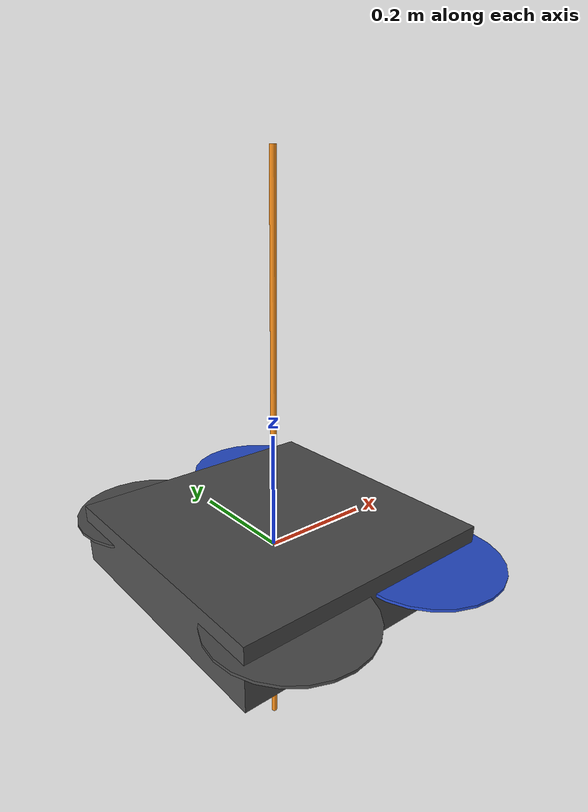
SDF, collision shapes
<sdf version='1.5'>
  <model name='iris'>
    <link name='base_link'>
      <pose frame=''>0 0 0 0 -0 0</pose>
      <inertial>
        <pose frame=''>0 0 0 0 -0 0</pose>
        <mass>1.5</mass>
        <inertia>
          <ixx>0.0347563</ixx>
          <ixy>0</ixy>
          <ixz>0</ixz>
          <iyy>0.0458929</iyy>
          <iyz>0</iyz>
          <izz>0.0977</izz>
        </inertia>
      </inertial>
      <collision name='base_link_inertia_collision'>
        <pose frame=''>0 0 0 0 -0 0</pose>
        <geometry>
          <box>
            <size>0.47 0.47 0.11</size>
          </box>
        </geometry>
        <surface>
          <contact>
            <ode>
              <min_depth>0.001</min_depth>
              <max_vel>0</max_vel>
            </ode>
          </contact>
          <friction>
            <ode/>
          </friction>
        </surface>
      </collision>
      <visual name='base_link_inertia_visual'>
        <pose frame=''>0 0 0 0 -0 0</pose>
        <geometry>
          <mesh>
            <scale>1 1 1</scale>
            <uri>model://rotors_description/meshes/iris.stl</uri>
          </mesh>
        </geometry>
        <material>
          <script>
            <name>Gazebo/DarkGrey</name>
            <uri>file://media/materials/scripts/gazebo.material</uri>
          </script>
        </material>
      </visual>
      <gravity>1</gravity>
      <velocity_decay/>
      <self_collide>0</self_collide>
    </link>
    <link name='iris/imu_link'>
      <pose frame=''>0 0 0 0 -0 0</pose>
      <inertial>
        <pose frame=''>0 0 0 0 -0 0</pose>
        <mass>0.015</mass>
        <inertia>
          <ixx>1e-05</ixx>
          <ixy>0</ixy>
          <ixz>0</ixz>
          <iyy>1e-05</iyy>
          <iyz>0</iyz>
          <izz>1e-05</izz>
        </inertia>
      </inertial>
    </link>
    <joint name='iris/imu_joint' type='revolute'>
      <child>iris/imu_link</child>
      <parent>base_link</parent>
      <axis>
        <xyz>1 0 0</xyz>
        <limit>
          <lower>0</lower>
          <upper>0</upper>
          <effort>0</effort>
          <velocity>0</velocity>
        </limit>
        <dynamics>
          <spring_reference>0</spring_reference>
          <spring_stiffness>0</spring_stiffness>
        </dynamics>
        <use_parent_model_frame>1</use_parent_model_frame>
      </axis>
    </joint>
    <link name='pendulum_link'>
      <pose frame=''>0 0 0.11 0 -0 0</pose>
      <inertial>
        <pose frame=''>0 0 0.61 0 -0 0</pose>
        <mass>0.002</mass>
        <inertia>
          <ixx>9.75e-07</ixx>
          <ixy>0</ixy>
          <ixz>0</ixz>
          <iyy>0.000166704</iyy>
          <iyz>0</iyz>
          <izz>0.000167604</izz>
        </inertia>
      </inertial>
      <collision name='pendulum_link_collision'>
        <pose frame=''>0 0 0 0 -0 0</pose>
        <geometry>
          <cylinder>
            <length>1</length>
            <radius>0.005</radius>
          </cylinder>
        </geometry>
        <surface>
          <contact>
            <ode/>
          </contact>
          <friction>
            <ode/>
          </friction>
        </surface>
      </collision>
      <visual name='pendulum_link_visual'>
        <pose frame=''>0 0 0.61 0 -0 0</pose>
        <geometry>
          <cylinder>
            <length>1</length>
            <radius>0.005</radius>
          </cylinder>
        </geometry>
        <material>
          <script>
            <name>Gazebo/Orange</name>
            <uri>file://media/materials/scripts/gazebo.material</uri>
          </script>
        </material>
      </visual>
      <gravity>1</gravity>
      <velocity_decay/>
      <self_collide>0</self_collide>
    </link>
    <joint name='pendulum_joint' type='revolute'>
      <child>pendulum_link</child>
      <parent>base_link</parent>
      <axis>
        <xyz>1 0 0</xyz>
        <limit>
          <lower>-1e+16</lower>
          <upper>1e+16</upper>
        </limit>
        <dynamics>
          <spring_reference>0</spring_reference>
          <spring_stiffness>0</spring_stiffness>
        </dynamics>
        <use_parent_model_frame>1</use_parent_model_frame>
      </axis>
    </joint>
    <link name='rotor_0'>
      <pose frame=''>0.13 -0.22 0.023 0 -0 0</pose>
      <inertial>
        <pose frame=''>0 0 0 0 -0 0</pose>
        <mass>0.005</mass>
        <inertia>
          <ixx>9.75e-07</ixx>
          <ixy>0</ixy>
          <ixz>0</ixz>
          <iyy>0.000273104</iyy>
          <iyz>0</iyz>
          <izz>0.000274004</izz>
        </inertia>
      </inertial>
      <collision name='rotor_0_collision'>
        <pose frame=''>0 0 0 0 -0 0</pose>
        <geometry>
          <cylinder>
            <length>0.005</length>
            <radius>0.128</radius>
          </cylinder>
        </geometry>
        <surface>
          <contact>
            <ode/>
          </contact>
          <friction>
            <ode/>
          </friction>
        </surface>
      </collision>
      <visual name='rotor_0_visual'>
        <pose frame=''>0 0 0 0 -0 0</pose>
        <geometry>
          <mesh>
            <scale>1 1 1</scale>
            <uri>model://rotors_description/meshes/iris_prop_ccw.dae</uri>
          </mesh>
        </geometry>
        <material>
          <script>
            <name>Gazebo/Blue</name>
            <uri>file://media/materials/scripts/gazebo.material</uri>
          </script>
        </material>
      </visual>
      <gravity>1</gravity>
      <velocity_decay/>
      <self_collide>0</self_collide>
    </link>
    <joint name='rotor_0_joint' type='revolute'>
      <child>rotor_0</child>
      <parent>base_link</parent>
      <axis>
        <xyz>0 0 1</xyz>
        <limit>
          <lower>-1e+16</lower>
          <upper>1e+16</upper>
        </limit>
        <dynamics>
          <spring_reference>0</spring_reference>
          <spring_stiffness>0</spring_stiffness>
        </dynamics>
        <use_parent_model_frame>1</use_parent_model_frame>
      </axis>
    </joint>
    <link name='rotor_1'>
      <pose frame=''>-0.13 0.2 0.023 0 -0 0</pose>
      <inertial>
        <pose frame=''>0 0 0 0 -0 0</pose>
        <mass>0.005</mass>
        <inertia>
          <ixx>9.75e-07</ixx>
          <ixy>0</ixy>
          <ixz>0</ixz>
          <iyy>0.000273104</iyy>
          <iyz>0</iyz>
          <izz>0.000274004</izz>
        </inertia>
      </inertial>
      <collision name='rotor_1_collision'>
        <pose frame=''>0 0 0 0 -0 0</pose>
        <geometry>
          <cylinder>
            <length>0.005</length>
            <radius>0.128</radius>
          </cylinder>
        </geometry>
        <surface>
          <contact>
            <ode/>
          </contact>
          <friction>
            <ode/>
          </friction>
        </surface>
      </collision>
      <visual name='rotor_1_visual'>
        <pose frame=''>0 0 0 0 -0 0</pose>
        <geometry>
          <mesh>
            <scale>1 1 1</scale>
            <uri>model://rotors_description/meshes/iris_prop_ccw.dae</uri>
          </mesh>
        </geometry>
        <material>
          <script>
            <name>Gazebo/DarkGrey</name>
            <uri>file://media/materials/scripts/gazebo.material</uri>
          </script>
        </material>
      </visual>
      <gravity>1</gravity>
      <velocity_decay/>
      <self_collide>0</self_collide>
    </link>
    <joint name='rotor_1_joint' type='revolute'>
      <child>rotor_1</child>
      <parent>base_link</parent>
      <axis>
        <xyz>0 0 1</xyz>
        <limit>
          <lower>-1e+16</lower>
          <upper>1e+16</upper>
        </limit>
        <dynamics>
          <spring_reference>0</spring_reference>
          <spring_stiffness>0</spring_stiffness>
        </dynamics>
        <use_parent_model_frame>1</use_parent_model_frame>
      </axis>
    </joint>
    <link name='rotor_2'>
      <pose frame=''>0.13 0.22 0.023 0 -0 0</pose>
      <inertial>
        <pose frame=''>0 0 0 0 -0 0</pose>
        <mass>0.005</mass>
        <inertia>
          <ixx>9.75e-07</ixx>
          <ixy>0</ixy>
          <ixz>0</ixz>
          <iyy>0.000273104</iyy>
          <iyz>0</iyz>
          <izz>0.000274004</izz>
        </inertia>
      </inertial>
      <collision name='rotor_2_collision'>
        <pose frame=''>0 0 0 0 -0 0</pose>
        <geometry>
          <cylinder>
            <length>0.005</length>
            <radius>0.128</radius>
          </cylinder>
        </geometry>
        <surface>
          <contact>
            <ode/>
          </contact>
          <friction>
            <ode/>
          </friction>
        </surface>
      </collision>
      <visual name='rotor_2_visual'>
        <pose frame=''>0 0 0 0 -0 0</pose>
        <geometry>
          <mesh>
            <scale>1 1 1</scale>
            <uri>model://rotors_description/meshes/iris_prop_cw.dae</uri>
          </mesh>
        </geometry>
        <material>
          <script>
            <name>Gazebo/Blue</name>
            <uri>file://media/materials/scripts/gazebo.material</uri>
          </script>
        </material>
      </visual>
      <gravity>1</gravity>
      <velocity_decay/>
      <self_collide>0</self_collide>
    </link>
    <joint name='rotor_2_joint' type='revolute'>
      <child>rotor_2</child>
      <parent>base_link</parent>
      <axis>
        <xyz>0 0 1</xyz>
        <limit>
          <lower>-1e+16</lower>
          <upper>1e+16</upper>
        </limit>
        <dynamics>
          <spring_reference>0</spring_reference>
          <spring_stiffness>0</spring_stiffness>
        </dynamics>
        <use_parent_model_frame>1</use_parent_model_frame>
      </axis>
    </joint>
    <link name='rotor_3'>
      <pose frame=''>-0.13 -0.2 0.023 0 -0 0</pose>
      <inertial>
        <pose frame=''>0 0 0 0 -0 0</pose>
        <mass>0.005</mass>
        <inertia>
          <ixx>9.75e-07</ixx>
          <ixy>0</ixy>
          <ixz>0</ixz>
          <iyy>0.000273104</iyy>
          <iyz>0</iyz>
          <izz>0.000274004</izz>
        </inertia>
      </inertial>
      <collision name='rotor_3_collision'>
        <pose frame=''>0 0 0 0 -0 0</pose>
        <geometry>
          <cylinder>
            <length>0.005</length>
            <radius>0.128</radius>
          </cylinder>
        </geometry>
        <surface>
          <contact>
            <ode/>
          </contact>
          <friction>
            <ode/>
          </friction>
        </surface>
      </collision>
      <visual name='rotor_3_visual'>
        <pose frame=''>0 0 0 0 -0 0</pose>
        <geometry>
          <mesh>
            <scale>1 1 1</scale>
            <uri>model://rotors_description/meshes/iris_prop_cw.dae</uri>
          </mesh>
        </geometry>
        <material>
          <script>
            <name>Gazebo/DarkGrey</name>
            <uri>file://media/materials/scripts/gazebo.material</uri>
          </script>
        </material>
      </visual>
      <gravity>1</gravity>
      <velocity_decay/>
      <self_collide>0</self_collide>
    </link>
    <joint name='rotor_3_joint' type='revolute'>
      <child>rotor_3</child>
      <parent>base_link</parent>
      <axis>
        <xyz>0 0 1</xyz>
        <limit>
          <lower>-1e+16</lower>
          <upper>1e+16</upper>
        </limit>
        <dynamics>
          <spring_reference>0</spring_reference>
          <spring_stiffness>0</spring_stiffness>
        </dynamics>
        <use_parent_model_frame>1</use_parent_model_frame>
      </axis>
    </joint>
    <plugin name='rosbag' filename='librotors_gazebo_multirotor_base_plugin.so'>
      <robotNamespace>iris</robotNamespace>
      <linkName>base_link</linkName>
      <rotorVelocitySlowdownSim>10</rotorVelocitySlowdownSim>
    </plugin>
    <plugin name='pendulum' filename='libgazebo_pendulum_plugin.so'>
      <robotNamespace>iris</robotNamespace>
      <jointName>pendulum_joint</jointName>
      <linkName>pendulum_link</linkName>
    </plugin>
    <plugin name='front_right_motor_model' filename='librotors_gazebo_motor_model.so'>
      <robotNamespace>iris</robotNamespace>
      <jointName>rotor_0_joint</jointName>
      <linkName>rotor_0</linkName>
      <turningDirection>ccw</turningDirection>
      <timeConstantUp>0.0125</timeConstantUp>
      <timeConstantDown>0.025</timeConstantDown>
      <maxRotVelocity>1100</maxRotVelocity>
      <motorConstant>8.54858e-06</motorConstant>
      <momentConstant>0.06</momentConstant>
      <commandSubTopic>/gazebo/command/motor_speed</commandSubTopic>
      <motorNumber>0</motorNumber>
      <rotorDragCoefficient>0.000806428</rotorDragCoefficient>
      <rollingMomentCoefficient>1e-06</rollingMomentCoefficient>
      <motorSpeedPubTopic>/motor_speed/0</motorSpeedPubTopic>
      <rotorVelocitySlowdownSim>10</rotorVelocitySlowdownSim>
    </plugin>
    <plugin name='back_left_motor_model' filename='librotors_gazebo_motor_model.so'>
      <robotNamespace>iris</robotNamespace>
      <jointName>rotor_1_joint</jointName>
      <linkName>rotor_1</linkName>
      <turningDirection>ccw</turningDirection>
      <timeConstantUp>0.0125</timeConstantUp>
      <timeConstantDown>0.025</timeConstantDown>
      <maxRotVelocity>1100</maxRotVelocity>
      <motorConstant>8.54858e-06</motorConstant>
      <momentConstant>0.06</momentConstant>
      <commandSubTopic>/gazebo/command/motor_speed</commandSubTopic>
      <motorNumber>1</motorNumber>
      <rotorDragCoefficient>0.000806428</rotorDragCoefficient>
      <rollingMomentCoefficient>1e-06</rollingMomentCoefficient>
      <motorSpeedPubTopic>/motor_speed/1</motorSpeedPubTopic>
      <rotorVelocitySlowdownSim>10</rotorVelocitySlowdownSim>
    </plugin>
    <plugin name='front_left_motor_model' filename='librotors_gazebo_motor_model.so'>
      <robotNamespace>iris</robotNamespace>
      <jointName>rotor_2_joint</jointName>
      <linkName>rotor_2</linkName>
      <turningDirection>cw</turningDirection>
      <timeConstantUp>0.0125</timeConstantUp>
      <timeConstantDown>0.025</timeConstantDown>
      <maxRotVelocity>1100</maxRotVelocity>
      <motorConstant>8.54858e-06</motorConstant>
      <momentConstant>0.06</momentConstant>
      <commandSubTopic>/gazebo/command/motor_speed</commandSubTopic>
      <motorNumber>2</motorNumber>
      <rotorDragCoefficient>0.000806428</rotorDragCoefficient>
      <rollingMomentCoefficient>1e-06</rollingMomentCoefficient>
      <motorSpeedPubTopic>/motor_speed/2</motorSpeedPubTopic>
      <rotorVelocitySlowdownSim>10</rotorVelocitySlowdownSim>
    </plugin>
    <plugin name='back_right_motor_model' filename='librotors_gazebo_motor_model.so'>
      <robotNamespace>iris</robotNamespace>
      <jointName>rotor_3_joint</jointName>
      <linkName>rotor_3</linkName>
      <turningDirection>cw</turningDirection>
      <timeConstantUp>0.0125</timeConstantUp>
      <timeConstantDown>0.025</timeConstantDown>
      <maxRotVelocity>1100</maxRotVelocity>
      <motorConstant>8.54858e-06</motorConstant>
      <momentConstant>0.06</momentConstant>
      <commandSubTopic>/gazebo/command/motor_speed</commandSubTopic>
      <motorNumber>3</motorNumber>
      <rotorDragCoefficient>0.000806428</rotorDragCoefficient>
      <rollingMomentCoefficient>1e-06</rollingMomentCoefficient>
      <motorSpeedPubTopic>/motor_speed/3</motorSpeedPubTopic>
      <rotorVelocitySlowdownSim>10</rotorVelocitySlowdownSim>
    </plugin>
    <plugin name='mavlink_interface' filename='librotors_gazebo_mavlink_interface.so'>
      <robotNamespace>iris</robotNamespace>
      <imuSubTopic>/imu</imuSubTopic>
      <motorSpeedCommandPubTopic>/gazebo/command/motor_speed</motorSpeedCommandPubTopic>
    </plugin>
    <static>0</static>
    <plugin name='rotors_gazebo_imu_plugin' filename='librotors_gazebo_imu_plugin.so'>
      <robotNamespace>iris</robotNamespace>
      <linkName>iris/imu_link</linkName>
      <imuTopic>/imu</imuTopic>
      <gyroscopeNoiseDensity>0.0003394</gyroscopeNoiseDensity>
      <gyroscopeRandomWalk>3.8785e-05</gyroscopeRandomWalk>
      <gyroscopeBiasCorrelationTime>1000.0</gyroscopeBiasCorrelationTime>
      <gyroscopeTurnOnBiasSigma>0.0087</gyroscopeTurnOnBiasSigma>
      <accelerometerNoiseDensity>0.004</accelerometerNoiseDensity>
      <accelerometerRandomWalk>0.006</accelerometerRandomWalk>
      <accelerometerBiasCorrelationTime>300.0</accelerometerBiasCorrelationTime>
      <accelerometerTurnOnBiasSigma>0.196</accelerometerTurnOnBiasSigma>
    </plugin>
  </model>
</sdf>
